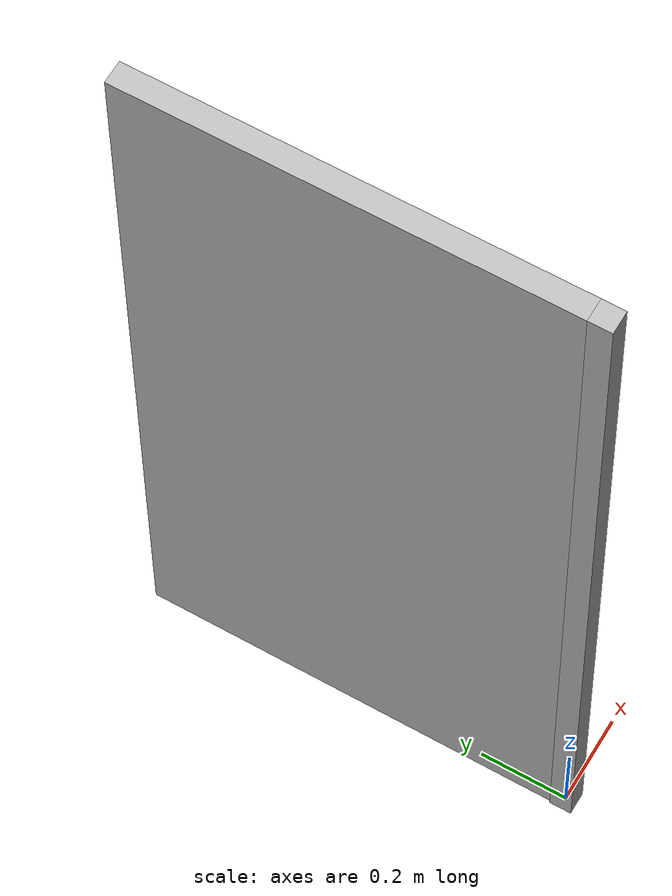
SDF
<?xml version='1.0'?>
<sdf version="1.4">
    <model name="my_door">
        <pose>0 0 0 0 0 0</pose>
        <static>false</static>
        <link name="door_body">
            <pose>0 0.50 1.005 0 0 0 </pose>
            <inertial>
                <mass>1.0</mass>
                <inertia> <!-- inertias are tricky to compute -->
                    <!-- http://gazebosim.org/tutorials?tut=inertia&cat=build_robot -->
                    <ixx>0.4069</ixx>       <!-- for a box: ixx = 0.083 * mass * (y*y + z*z) -->
                    <ixy>0.0</ixy>         <!-- for a box: ixy = 0 -->
                    <ixz>0.0</ixz>         <!-- for a box: ixz = 0 -->
                    <iyy>0.3322</iyy>       <!-- for a box: iyy = 0.083 * mass * (x*x + z*z) -->
                    <iyz>0.0</iyz>         <!-- for a box: iyz = 0 -->
                    <izz>0.0751</izz>       <!-- for a box: izz = 0.083 * mass * (x*x + y*y) -->
                </inertia>
            </inertial>
            <collision name="collision">
                <geometry>
                    <box>
                        <size>0.05 0.95 1.99</size>
                    </box>
                </geometry>
            </collision>
            <visual name="visual">
                <geometry>
                    <box>
                        <size>0.05 0.95 1.99</size>
                    </box>
                </geometry>
            </visual>
        </link>

        <link name="door_hinge">
            <static>true</static>
            <pose>0 0 1 0 0 0 </pose>
            <inertial>
                <mass>100.0</mass>
                <inertia> <!-- inertias are tricky to compute -->
                <!-- http://gazebosim.org/tutorials?tut=inertia&cat=build_robot -->
                <ixx>33.22</ixx>       <!-- for a box: ixx = 0.083 * mass * (y*y + z*z) -->
                <ixy>0.0</ixy>         <!-- for a box: ixy = 0 -->
                <ixz>0.0</ixz>         <!-- for a box: ixz = 0 -->
                <iyy>33.22</iyy>       <!-- for a box: iyy = 0.083 * mass * (x*x + z*z) -->
                <iyz>0.0</iyz>         <!-- for a box: iyz = 0 -->
                <izz>0.0415</izz>       <!-- for a box: izz = 0.083 * mass * (x*x + y*y) -->
                </inertia>
            </inertial>
            <collision name="collision">
                <geometry>
                    <box>
                        <size>0.05 0.05 2.0</size>
                    </box>
                </geometry>
            </collision>
            <visual name="visual">
                <geometry>
                    <box>
                        <size>0.05 0.05 2.0</size>
                    </box>
                </geometry>
            </visual>
        </link>

        <joint type="revolute" name="hinge">
            <pose>-0.025 0.025 0 0 0 0</pose>
            <child>door_hinge</child>
            <parent>door_body</parent>
            <axis>
                <xyz>0 0 1</xyz>
                <limit>
                    <lower>-2.0</lower>
                    <upper>0.0</upper>
                </limit>
            </axis>
        </joint>

    </model>
</sdf>
